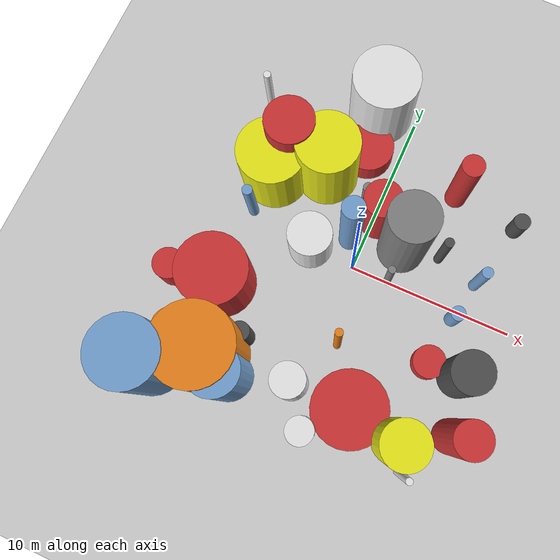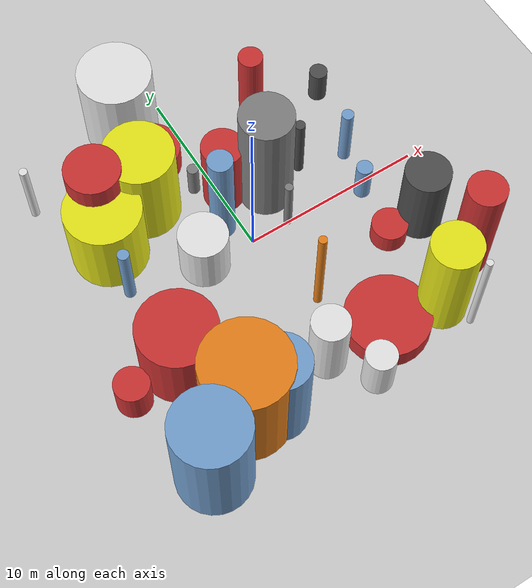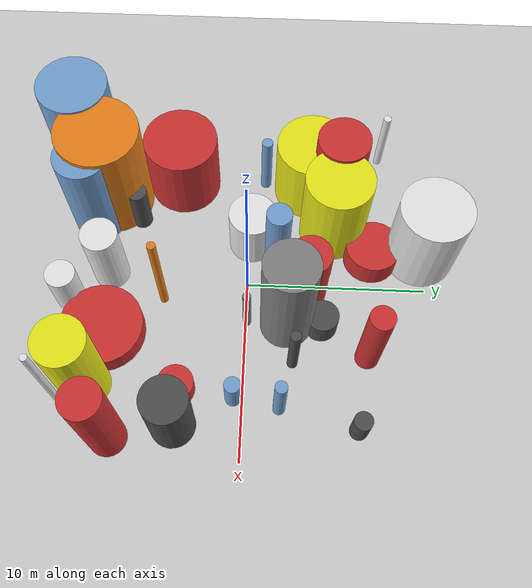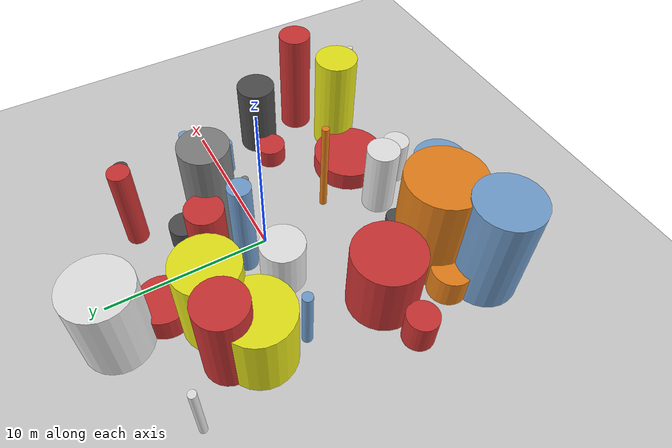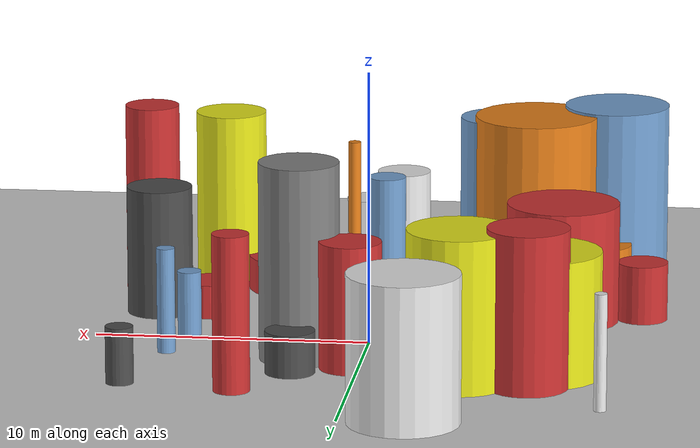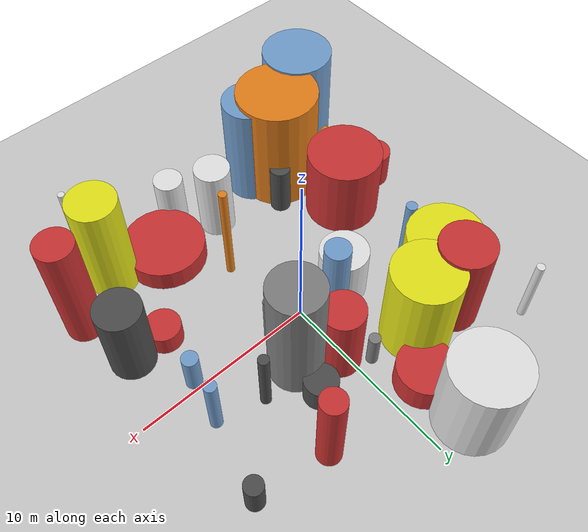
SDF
<?xml version='1.0'?>
<sdf version='1.6'>
  <world name='default'>
    <!-- Sun light -->
    <light name='sun' type='directional'>
      <cast_shadows>1</cast_shadows>
      <pose>0 0 10 0 0 0</pose>
      <diffuse>0.8 0.8 0.8 1</diffuse>
      <specular>0.2 0.2 0.2 1</specular>
      <attenuation>
        <range>1000</range>
        <constant>0.9</constant>
        <linear>0.01</linear>
        <quadratic>0.001</quadratic>
      </attenuation>
      <direction>-0.5 0.1 -0.9</direction>
    </light>

    <!-- Ground plane -->
    <model name='ground_plane'>
      <static>1</static>
      <link name='link'>
        <collision name='collision'>
          <geometry>
            <plane>
              <normal>0 0 1</normal>
              <size>100 100</size>
            </plane>
          </geometry>
          <surface>
            <contact>
              <collide_bitmask>65535</collide_bitmask>
              <ode/>
            </contact>
            <friction>
              <ode>
                <mu>100</mu>
                <mu2>50</mu2>
              </ode>
              <torsional><ode/></torsional>
            </friction>
            <bounce/>
          </surface>
          <max_contacts>10</max_contacts>
        </collision>
        <visual name='visual'>
          <cast_shadows>0</cast_shadows>
          <geometry>
            <plane>
              <normal>0 0 1</normal>
              <size>100 100</size>
            </plane>
          </geometry>
          <material>
            <script>
              <uri>file://media/materials/scripts/gazebo.material</uri>
              <n>Gazebo/Grey</n>
            </script>
          </material>
        </visual>
      </link>
    </model>

    <!-- Environment -->
    <magnetic_field>6e-06 2.3e-05 -4.2e-05</magnetic_field>
    <atmosphere type='adiabatic'/>
    <physics name='default_physics' default='0' type='ode'>
      <gravity>0 0 -9.8</gravity>
      <max_step_size>0.004</max_step_size>
      <real_time_factor>1</real_time_factor>
      <real_time_update_rate>250</real_time_update_rate>
    </physics>
    <scene>
      <ambient>0.4 0.4 0.4 1</ambient>
      <background>0.7 0.7 0.7 1</background>
      <shadows>1</shadows>
    </scene>
    <wind/>
    <spherical_coordinates>
      <surface_model>EARTH_WGS84</surface_model>
      <latitude_deg>0</latitude_deg>
      <longitude_deg>0</longitude_deg>
      <elevation>0</elevation>
      <heading_deg>0</heading_deg>
    </spherical_coordinates>

    <!-- ============ OBSTACLES (35) ============ -->
    <model name='obs_00'>
      <static>1</static>
      <link name='link'>
        <visual name='visual'>
          <geometry>
            <cylinder>
              <radius>2.0768</radius>
              <length>4.4264</length>
            </cylinder>
          </geometry>
          <material>
            <script>
              <n>Gazebo/Red</n>
              <uri>file://media/materials/scripts/gazebo.material</uri>
            </script>
            <ambient>0.8 0.2 0.2 1</ambient>
          </material>
        </visual>
        <collision name='collision'>
          <geometry>
            <cylinder>
              <radius>2.0768</radius>
              <length>4.4264</length>
            </cylinder>
          </geometry>
          <max_contacts>10</max_contacts>
          <surface>
            <contact><ode/></contact>
            <bounce/>
            <friction>
              <ode><mu>1</mu><mu2>1</mu2></ode>
              <torsional><ode/></torsional>
            </friction>
          </surface>
        </collision>
      </link>
      <pose>-6.7344 -4.0195 2.2132 0 0 3.0028</pose>
    </model>

    <model name='obs_01'>
      <static>1</static>
      <link name='link'>
        <visual name='visual'>
          <geometry>
            <cylinder>
              <radius>1.1749</radius>
              <length>1.9736</length>
            </cylinder>
          </geometry>
          <material>
            <script>
              <n>Gazebo/Orange</n>
              <uri>file://media/materials/scripts/gazebo.material</uri>
            </script>
            <ambient>0.9 0.5 0.1 1</ambient>
          </material>
        </visual>
        <collision name='collision'>
          <geometry>
            <cylinder>
              <radius>1.1749</radius>
              <length>1.9736</length>
            </cylinder>
          </geometry>
          <max_contacts>10</max_contacts>
          <surface>
            <contact><ode/></contact>
            <bounce/>
            <friction>
              <ode><mu>1</mu><mu2>1</mu2></ode>
              <torsional><ode/></torsional>
            </friction>
          </surface>
        </collision>
      </link>
      <pose>-7.8883 -7.6661 0.9868 0 0 0.8868</pose>
    </model>

    <model name='obs_02'>
      <static>1</static>
      <link name='link'>
        <visual name='visual'>
          <geometry>
            <cylinder>
              <radius>0.6553</radius>
              <length>5.6407</length>
            </cylinder>
          </geometry>
          <material>
            <script>
              <n>Gazebo/Red</n>
              <uri>file://media/materials/scripts/gazebo.material</uri>
            </script>
            <ambient>0.8 0.2 0.2 1</ambient>
          </material>
        </visual>
        <collision name='collision'>
          <geometry>
            <cylinder>
              <radius>0.6553</radius>
              <length>5.6407</length>
            </cylinder>
          </geometry>
          <max_contacts>10</max_contacts>
          <surface>
            <contact><ode/></contact>
            <bounce/>
            <friction>
              <ode><mu>1</mu><mu2>1</mu2></ode>
              <torsional><ode/></torsional>
            </friction>
          </surface>
        </collision>
      </link>
      <pose>4.0668 6.6508 2.8204 0 0 1.2073</pose>
    </model>

    <model name='obs_03'>
      <static>1</static>
      <link name='link'>
        <visual name='visual'>
          <geometry>
            <cylinder>
              <radius>1.9779</radius>
              <length>5.2497</length>
            </cylinder>
          </geometry>
          <material>
            <script>
              <n>Gazebo/White</n>
              <uri>file://media/materials/scripts/gazebo.material</uri>
            </script>
            <ambient>0.9 0.9 0.9 1</ambient>
          </material>
        </visual>
        <collision name='collision'>
          <geometry>
            <cylinder>
              <radius>1.9779</radius>
              <length>5.2497</length>
            </cylinder>
          </geometry>
          <max_contacts>10</max_contacts>
          <surface>
            <contact><ode/></contact>
            <bounce/>
            <friction>
              <ode><mu>1</mu><mu2>1</mu2></ode>
              <torsional><ode/></torsional>
            </friction>
          </surface>
        </collision>
      </link>
      <pose>-2.2908 9.8104 2.6248 0 0 0.0479</pose>
    </model>

    <model name='obs_04'>
      <static>1</static>
      <link name='link'>
        <visual name='visual'>
          <geometry>
            <cylinder>
              <radius>1.3185</radius>
              <length>3.2447</length>
            </cylinder>
          </geometry>
          <material>
            <script>
              <n>Gazebo/White</n>
              <uri>file://media/materials/scripts/gazebo.material</uri>
            </script>
            <ambient>0.9 0.9 0.9 1</ambient>
          </material>
        </visual>
        <collision name='collision'>
          <geometry>
            <cylinder>
              <radius>1.3185</radius>
              <length>3.2447</length>
            </cylinder>
          </geometry>
          <max_contacts>10</max_contacts>
          <surface>
            <contact><ode/></contact>
            <bounce/>
            <friction>
              <ode><mu>1</mu><mu2>1</mu2></ode>
              <torsional><ode/></torsional>
            </friction>
          </surface>
        </collision>
      </link>
      <pose>-2.8053 0.1844 1.6223 0 0 1.1938</pose>
    </model>

    <model name='obs_05'>
      <static>1</static>
      <link name='link'>
        <visual name='visual'>
          <geometry>
            <cylinder>
              <radius>2.2690</radius>
              <length>1.2789</length>
            </cylinder>
          </geometry>
          <material>
            <script>
              <n>Gazebo/Red</n>
              <uri>file://media/materials/scripts/gazebo.material</uri>
            </script>
            <ambient>0.8 0.2 0.2 1</ambient>
          </material>
        </visual>
        <collision name='collision'>
          <geometry>
            <cylinder>
              <radius>2.2690</radius>
              <length>1.2789</length>
            </cylinder>
          </geometry>
          <max_contacts>10</max_contacts>
          <surface>
            <contact><ode/></contact>
            <bounce/>
            <friction>
              <ode><mu>1</mu><mu2>1</mu2></ode>
              <torsional><ode/></torsional>
            </friction>
          </surface>
        </collision>
      </link>
      <pose>3.1685 -7.7235 0.6395 0 0 1.9276</pose>
    </model>

    <model name='obs_06'>
      <static>1</static>
      <link name='link'>
        <visual name='visual'>
          <geometry>
            <cylinder>
              <radius>0.2241</radius>
              <length>3.4947</length>
            </cylinder>
          </geometry>
          <material>
            <script>
              <n>Gazebo/Grey</n>
              <uri>file://media/materials/scripts/gazebo.material</uri>
            </script>
            <ambient>0.5 0.5 0.5 1</ambient>
          </material>
        </visual>
        <collision name='collision'>
          <geometry>
            <cylinder>
              <radius>0.2241</radius>
              <length>3.4947</length>
            </cylinder>
          </geometry>
          <max_contacts>10</max_contacts>
          <surface>
            <contact><ode/></contact>
            <bounce/>
            <friction>
              <ode><mu>1</mu><mu2>1</mu2></ode>
              <torsional><ode/></torsional>
            </friction>
          </surface>
        </collision>
      </link>
      <pose>2.2492 0.0797 1.7473 0 0 0.6633</pose>
    </model>

    <model name='obs_07'>
      <static>1</static>
      <link name='link'>
        <visual name='visual'>
          <geometry>
            <cylinder>
              <radius>1.3225</radius>
              <length>6.5872</length>
            </cylinder>
          </geometry>
          <material>
            <script>
              <n>Gazebo/Yellow</n>
              <uri>file://media/materials/scripts/gazebo.material</uri>
            </script>
            <ambient>0.9 0.9 0.1 1</ambient>
          </material>
        </visual>
        <collision name='collision'>
          <geometry>
            <cylinder>
              <radius>1.3225</radius>
              <length>6.5872</length>
            </cylinder>
          </geometry>
          <max_contacts>10</max_contacts>
          <surface>
            <contact><ode/></contact>
            <bounce/>
            <friction>
              <ode><mu>1</mu><mu2>1</mu2></ode>
              <torsional><ode/></torsional>
            </friction>
          </surface>
        </collision>
      </link>
      <pose>6.1739 -8.3020 3.2936 0 0 3.1333</pose>
    </model>

    <model name='obs_08'>
      <static>1</static>
      <link name='link'>
        <visual name='visual'>
          <geometry>
            <cylinder>
              <radius>0.8967</radius>
              <length>1.5483</length>
            </cylinder>
          </geometry>
          <material>
            <script>
              <n>Gazebo/DarkGrey</n>
              <uri>file://media/materials/scripts/gazebo.material</uri>
            </script>
            <ambient>0.3 0.3 0.3 1</ambient>
          </material>
        </visual>
        <collision name='collision'>
          <geometry>
            <cylinder>
              <radius>0.8967</radius>
              <length>1.5483</length>
            </cylinder>
          </geometry>
          <max_contacts>10</max_contacts>
          <surface>
            <contact><ode/></contact>
            <bounce/>
            <friction>
              <ode><mu>1</mu><mu2>1</mu2></ode>
              <torsional><ode/></torsional>
            </friction>
          </surface>
        </collision>
      </link>
      <pose>2.3340 4.1529 0.7742 0 0 2.2793</pose>
    </model>

    <model name='obs_09'>
      <static>1</static>
      <link name='link'>
        <visual name='visual'>
          <geometry>
            <cylinder>
              <radius>2.2875</radius>
              <length>6.7517</length>
            </cylinder>
          </geometry>
          <material>
            <script>
              <n>Gazebo/Orange</n>
              <uri>file://media/materials/scripts/gazebo.material</uri>
            </script>
            <ambient>0.9 0.5 0.1 1</ambient>
          </material>
        </visual>
        <collision name='collision'>
          <geometry>
            <cylinder>
              <radius>2.2875</radius>
              <length>6.7517</length>
            </cylinder>
          </geometry>
          <max_contacts>10</max_contacts>
          <surface>
            <contact><ode/></contact>
            <bounce/>
            <friction>
              <ode><mu>1</mu><mu2>1</mu2></ode>
              <torsional><ode/></torsional>
            </friction>
          </surface>
        </collision>
      </link>
      <pose>-5.4116 -8.1497 3.3759 0 0 2.2021</pose>
    </model>

    <model name='obs_10'>
      <static>1</static>
      <link name='link'>
        <visual name='visual'>
          <geometry>
            <cylinder>
              <radius>1.1228</radius>
              <length>4.6331</length>
            </cylinder>
          </geometry>
          <material>
            <script>
              <n>Gazebo/Red</n>
              <uri>file://media/materials/scripts/gazebo.material</uri>
            </script>
            <ambient>0.8 0.2 0.2 1</ambient>
          </material>
        </visual>
        <collision name='collision'>
          <geometry>
            <cylinder>
              <radius>1.1228</radius>
              <length>4.6331</length>
            </cylinder>
          </geometry>
          <max_contacts>10</max_contacts>
          <surface>
            <contact><ode/></contact>
            <bounce/>
            <friction>
              <ode><mu>1</mu><mu2>1</mu2></ode>
              <torsional><ode/></torsional>
            </friction>
          </surface>
        </collision>
      </link>
      <pose>0.2843 3.3186 2.3166 0 0 0.9047</pose>
    </model>

    <model name='obs_11'>
      <static>1</static>
      <link name='link'>
        <visual name='visual'>
          <geometry>
            <cylinder>
              <radius>0.6635</radius>
              <length>6.5957</length>
            </cylinder>
          </geometry>
          <material>
            <script>
              <n>Gazebo/Blue</n>
              <uri>file://media/materials/scripts/gazebo.material</uri>
            </script>
            <ambient>0.447 0.624 0.812 1</ambient>
          </material>
        </visual>
        <collision name='collision'>
          <geometry>
            <cylinder>
              <radius>0.6635</radius>
              <length>6.5957</length>
            </cylinder>
          </geometry>
          <max_contacts>10</max_contacts>
          <surface>
            <contact><ode/></contact>
            <bounce/>
            <friction>
              <ode><mu>1</mu><mu2>1</mu2></ode>
              <torsional><ode/></torsional>
            </friction>
          </surface>
        </collision>
      </link>
      <pose>-0.8446 1.5890 3.2979 0 0 2.0548</pose>
    </model>

    <model name='obs_12'>
      <static>1</static>
      <link name='link'>
        <visual name='visual'>
          <geometry>
            <cylinder>
              <radius>1.8726</radius>
              <length>5.5595</length>
            </cylinder>
          </geometry>
          <material>
            <script>
              <n>Gazebo/Yellow</n>
              <uri>file://media/materials/scripts/gazebo.material</uri>
            </script>
            <ambient>0.9 0.9 0.1 1</ambient>
          </material>
        </visual>
        <collision name='collision'>
          <geometry>
            <cylinder>
              <radius>1.8726</radius>
              <length>5.5595</length>
            </cylinder>
          </geometry>
          <max_contacts>10</max_contacts>
          <surface>
            <contact><ode/></contact>
            <bounce/>
            <friction>
              <ode><mu>1</mu><mu2>1</mu2></ode>
              <torsional><ode/></torsional>
            </friction>
          </surface>
        </collision>
      </link>
      <pose>-3.7150 4.7724 2.7797 0 0 1.6637</pose>
    </model>

    <model name='obs_13'>
      <static>1</static>
      <link name='link'>
        <visual name='visual'>
          <geometry>
            <cylinder>
              <radius>2.0297</radius>
              <length>4.5300</length>
            </cylinder>
          </geometry>
          <material>
            <script>
              <n>Gazebo/Yellow</n>
              <uri>file://media/materials/scripts/gazebo.material</uri>
            </script>
            <ambient>0.9 0.9 0.1 1</ambient>
          </material>
        </visual>
        <collision name='collision'>
          <geometry>
            <cylinder>
              <radius>2.0297</radius>
              <length>4.5300</length>
            </cylinder>
          </geometry>
          <max_contacts>10</max_contacts>
          <surface>
            <contact><ode/></contact>
            <bounce/>
            <friction>
              <ode><mu>1</mu><mu2>1</mu2></ode>
              <torsional><ode/></torsional>
            </friction>
          </surface>
        </collision>
      </link>
      <pose>-6.6127 3.4275 2.2650 0 0 2.9059</pose>
    </model>

    <model name='obs_14'>
      <static>1</static>
      <link name='link'>
        <visual name='visual'>
          <geometry>
            <cylinder>
              <radius>0.9643</radius>
              <length>1.2587</length>
            </cylinder>
          </geometry>
          <material>
            <script>
              <n>Gazebo/Red</n>
              <uri>file://media/materials/scripts/gazebo.material</uri>
            </script>
            <ambient>0.8 0.2 0.2 1</ambient>
          </material>
        </visual>
        <collision name='collision'>
          <geometry>
            <cylinder>
              <radius>0.9643</radius>
              <length>1.2587</length>
            </cylinder>
          </geometry>
          <max_contacts>10</max_contacts>
          <surface>
            <contact><ode/></contact>
            <bounce/>
            <friction>
              <ode><mu>1</mu><mu2>1</mu2></ode>
              <torsional><ode/></torsional>
            </friction>
          </surface>
        </collision>
      </link>
      <pose>6.2524 -3.4671 0.6293 0 0 0.8743</pose>
    </model>

    <model name='obs_15'>
      <static>1</static>
      <link name='link'>
        <visual name='visual'>
          <geometry>
            <cylinder>
              <radius>1.4576</radius>
              <length>6.5163</length>
            </cylinder>
          </geometry>
          <material>
            <script>
              <n>Gazebo/Blue</n>
              <uri>file://media/materials/scripts/gazebo.material</uri>
            </script>
            <ambient>0.447 0.624 0.812 1</ambient>
          </material>
        </visual>
        <collision name='collision'>
          <geometry>
            <cylinder>
              <radius>1.4576</radius>
              <length>6.5163</length>
            </cylinder>
          </geometry>
          <max_contacts>10</max_contacts>
          <surface>
            <contact><ode/></contact>
            <bounce/>
            <friction>
              <ode><mu>1</mu><mu2>1</mu2></ode>
              <torsional><ode/></torsional>
            </friction>
          </surface>
        </collision>
      </link>
      <pose>-3.9642 -8.8382 3.2582 0 0 3.0304</pose>
    </model>

    <model name='obs_16'>
      <static>1</static>
      <link name='link'>
        <visual name='visual'>
          <geometry>
            <cylinder>
              <radius>0.5740</radius>
              <length>3.0888</length>
            </cylinder>
          </geometry>
          <material>
            <script>
              <n>Gazebo/DarkGrey</n>
              <uri>file://media/materials/scripts/gazebo.material</uri>
            </script>
            <ambient>0.3 0.3 0.3 1</ambient>
          </material>
        </visual>
        <collision name='collision'>
          <geometry>
            <cylinder>
              <radius>0.5740</radius>
              <length>3.0888</length>
            </cylinder>
          </geometry>
          <max_contacts>10</max_contacts>
          <surface>
            <contact><ode/></contact>
            <bounce/>
            <friction>
              <ode><mu>1</mu><mu2>1</mu2></ode>
              <torsional><ode/></torsional>
            </friction>
          </surface>
        </collision>
      </link>
      <pose>-4.0648 -6.3775 1.5444 0 0 0.3318</pose>
    </model>

    <model name='obs_17'>
      <static>1</static>
      <link name='link'>
        <visual name='visual'>
          <geometry>
            <cylinder>
              <radius>1.4452</radius>
              <length>7.2028</length>
            </cylinder>
          </geometry>
          <material>
            <script>
              <n>Gazebo/Grey</n>
              <uri>file://media/materials/scripts/gazebo.material</uri>
            </script>
            <ambient>0.5 0.5 0.5 1</ambient>
          </material>
        </visual>
        <collision name='collision'>
          <geometry>
            <cylinder>
              <radius>1.4452</radius>
              <length>7.2028</length>
            </cylinder>
          </geometry>
          <max_contacts>10</max_contacts>
          <surface>
            <contact><ode/></contact>
            <bounce/>
            <friction>
              <ode><mu>1</mu><mu2>1</mu2></ode>
              <torsional><ode/></torsional>
            </friction>
          </surface>
        </collision>
      </link>
      <pose>2.2473 2.2343 3.6014 0 0 0.6812</pose>
    </model>

    <model name='obs_18'>
      <static>1</static>
      <link name='link'>
        <visual name='visual'>
          <geometry>
            <cylinder>
              <radius>1.9662</radius>
              <length>6.8559</length>
            </cylinder>
          </geometry>
          <material>
            <script>
              <n>Gazebo/Blue</n>
              <uri>file://media/materials/scripts/gazebo.material</uri>
            </script>
            <ambient>0.447 0.624 0.812 1</ambient>
          </material>
        </visual>
        <collision name='collision'>
          <geometry>
            <cylinder>
              <radius>1.9662</radius>
              <length>6.8559</length>
            </cylinder>
          </geometry>
          <max_contacts>10</max_contacts>
          <surface>
            <contact><ode/></contact>
            <bounce/>
            <friction>
              <ode><mu>1</mu><mu2>1</mu2></ode>
              <torsional><ode/></torsional>
            </friction>
          </surface>
        </collision>
      </link>
      <pose>-8.3362 -9.8539 3.4280 0 0 3.0411</pose>
    </model>

    <model name='obs_19'>
      <static>1</static>
      <link name='link'>
        <visual name='visual'>
          <geometry>
            <cylinder>
              <radius>0.4946</radius>
              <length>2.0604</length>
            </cylinder>
          </geometry>
          <material>
            <script>
              <n>Gazebo/DarkGrey</n>
              <uri>file://media/materials/scripts/gazebo.material</uri>
            </script>
            <ambient>0.3 0.3 0.3 1</ambient>
          </material>
        </visual>
        <collision name='collision'>
          <geometry>
            <cylinder>
              <radius>0.4946</radius>
              <length>2.0604</length>
            </cylinder>
          </geometry>
          <max_contacts>10</max_contacts>
          <surface>
            <contact><ode/></contact>
            <bounce/>
            <friction>
              <ode><mu>1</mu><mu2>1</mu2></ode>
              <torsional><ode/></torsional>
            </friction>
          </surface>
        </collision>
      </link>
      <pose>8.0995 6.1226 1.0302 0 0 0.4665</pose>
    </model>

    <model name='obs_20'>
      <static>1</static>
      <link name='link'>
        <visual name='visual'>
          <geometry>
            <cylinder>
              <radius>0.4365</radius>
              <length>2.3821</length>
            </cylinder>
          </geometry>
          <material>
            <script>
              <n>Gazebo/Blue</n>
              <uri>file://media/materials/scripts/gazebo.material</uri>
            </script>
            <ambient>0.447 0.624 0.812 1</ambient>
          </material>
        </visual>
        <collision name='collision'>
          <geometry>
            <cylinder>
              <radius>0.4365</radius>
              <length>2.3821</length>
            </cylinder>
          </geometry>
          <max_contacts>10</max_contacts>
          <surface>
            <contact><ode/></contact>
            <bounce/>
            <friction>
              <ode><mu>1</mu><mu2>1</mu2></ode>
              <torsional><ode/></torsional>
            </friction>
          </surface>
        </collision>
      </link>
      <pose>6.6219 -0.4683 1.1910 0 0 0.5347</pose>
    </model>

    <model name='obs_21'>
      <static>1</static>
      <link name='link'>
        <visual name='visual'>
          <geometry>
            <cylinder>
              <radius>0.2226</radius>
              <length>4.1639</length>
            </cylinder>
          </geometry>
          <material>
            <script>
              <n>Gazebo/White</n>
              <uri>file://media/materials/scripts/gazebo.material</uri>
            </script>
            <ambient>0.9 0.9 0.9 1</ambient>
          </material>
        </visual>
        <collision name='collision'>
          <geometry>
            <cylinder>
              <radius>0.2226</radius>
              <length>4.1639</length>
            </cylinder>
          </geometry>
          <max_contacts>10</max_contacts>
          <surface>
            <contact><ode/></contact>
            <bounce/>
            <friction>
              <ode><mu>1</mu><mu2>1</mu2></ode>
              <torsional><ode/></torsional>
            </friction>
          </surface>
        </collision>
      </link>
      <pose>-8.8489 7.6585 2.0820 0 0 1.2093</pose>
    </model>

    <model name='obs_22'>
      <static>1</static>
      <link name='link'>
        <visual name='visual'>
          <geometry>
            <cylinder>
              <radius>1.4645</radius>
              <length>5.7373</length>
            </cylinder>
          </geometry>
          <material>
            <script>
              <n>Gazebo/Red</n>
              <uri>file://media/materials/scripts/gazebo.material</uri>
            </script>
            <ambient>0.8 0.2 0.2 1</ambient>
          </material>
        </visual>
        <collision name='collision'>
          <geometry>
            <cylinder>
              <radius>1.4645</radius>
              <length>5.7373</length>
            </cylinder>
          </geometry>
          <max_contacts>10</max_contacts>
          <surface>
            <contact><ode/></contact>
            <bounce/>
            <friction>
              <ode><mu>1</mu><mu2>1</mu2></ode>
              <torsional><ode/></torsional>
            </friction>
          </surface>
        </collision>
      </link>
      <pose>-6.1470 5.0108 2.8686 0 0 2.3449</pose>
    </model>

    <model name='obs_23'>
      <static>1</static>
      <link name='link'>
        <visual name='visual'>
          <geometry>
            <cylinder>
              <radius>0.9941</radius>
              <length>4.5802</length>
            </cylinder>
          </geometry>
          <material>
            <script>
              <n>Gazebo/White</n>
              <uri>file://media/materials/scripts/gazebo.material</uri>
            </script>
            <ambient>0.9 0.9 0.9 1</ambient>
          </material>
        </visual>
        <collision name='collision'>
          <geometry>
            <cylinder>
              <radius>0.9941</radius>
              <length>4.5802</length>
            </cylinder>
          </geometry>
          <max_contacts>10</max_contacts>
          <surface>
            <contact><ode/></contact>
            <bounce/>
            <friction>
              <ode><mu>1</mu><mu2>1</mu2></ode>
              <torsional><ode/></torsional>
            </friction>
          </surface>
        </collision>
      </link>
      <pose>-0.4669 -7.7408 2.2901 0 0 0.8414</pose>
    </model>

    <model name='obs_24'>
      <static>1</static>
      <link name='link'>
        <visual name='visual'>
          <geometry>
            <cylinder>
              <radius>0.1857</radius>
              <length>6.3624</length>
            </cylinder>
          </geometry>
          <material>
            <script>
              <n>Gazebo/White</n>
              <uri>file://media/materials/scripts/gazebo.material</uri>
            </script>
            <ambient>0.9 0.9 0.9 1</ambient>
          </material>
        </visual>
        <collision name='collision'>
          <geometry>
            <cylinder>
              <radius>0.1857</radius>
              <length>6.3624</length>
            </cylinder>
          </geometry>
          <max_contacts>10</max_contacts>
          <surface>
            <contact><ode/></contact>
            <bounce/>
            <friction>
              <ode><mu>1</mu><mu2>1</mu2></ode>
              <torsional><ode/></torsional>
            </friction>
          </surface>
        </collision>
      </link>
      <pose>6.9649 -9.7741 3.1812 0 0 1.8644</pose>
    </model>

    <model name='obs_25'>
      <static>1</static>
      <link name='link'>
        <visual name='visual'>
          <geometry>
            <cylinder>
              <radius>0.9282</radius>
              <length>2.1620</length>
            </cylinder>
          </geometry>
          <material>
            <script>
              <n>Gazebo/Red</n>
              <uri>file://media/materials/scripts/gazebo.material</uri>
            </script>
            <ambient>0.8 0.2 0.2 1</ambient>
          </material>
        </visual>
        <collision name='collision'>
          <geometry>
            <cylinder>
              <radius>0.9282</radius>
              <length>2.1620</length>
            </cylinder>
          </geometry>
          <max_contacts>10</max_contacts>
          <surface>
            <contact><ode/></contact>
            <bounce/>
            <friction>
              <ode><mu>1</mu><mu2>1</mu2></ode>
              <torsional><ode/></torsional>
            </friction>
          </surface>
        </collision>
      </link>
      <pose>-9.6552 -4.4521 1.0810 0 0 0.6814</pose>
    </model>

    <model name='obs_26'>
      <static>1</static>
      <link name='link'>
        <visual name='visual'>
          <geometry>
            <cylinder>
              <radius>1.0098</radius>
              <length>7.0963</length>
            </cylinder>
          </geometry>
          <material>
            <script>
              <n>Gazebo/Red</n>
              <uri>file://media/materials/scripts/gazebo.material</uri>
            </script>
            <ambient>0.8 0.2 0.2 1</ambient>
          </material>
        </visual>
        <collision name='collision'>
          <geometry>
            <cylinder>
              <radius>1.0098</radius>
              <length>7.0963</length>
            </cylinder>
          </geometry>
          <max_contacts>10</max_contacts>
          <surface>
            <contact><ode/></contact>
            <bounce/>
            <friction>
              <ode><mu>1</mu><mu2>1</mu2></ode>
              <torsional><ode/></torsional>
            </friction>
          </surface>
        </collision>
      </link>
      <pose>8.9523 -6.7960 3.5481 0 0 0.9338</pose>
    </model>

    <model name='obs_27'>
      <static>1</static>
      <link name='link'>
        <visual name='visual'>
          <geometry>
            <cylinder>
              <radius>0.3065</radius>
              <length>4.1499</length>
            </cylinder>
          </geometry>
          <material>
            <script>
              <n>Gazebo/Blue</n>
              <uri>file://media/materials/scripts/gazebo.material</uri>
            </script>
            <ambient>0.447 0.624 0.812 1</ambient>
          </material>
        </visual>
        <collision name='collision'>
          <geometry>
            <cylinder>
              <radius>0.3065</radius>
              <length>4.1499</length>
            </cylinder>
          </geometry>
          <max_contacts>10</max_contacts>
          <surface>
            <contact><ode/></contact>
            <bounce/>
            <friction>
              <ode><mu>1</mu><mu2>1</mu2></ode>
              <torsional><ode/></torsional>
            </friction>
          </surface>
        </collision>
      </link>
      <pose>-6.9111 0.8523 2.0749 0 0 1.0565</pose>
    </model>

    <model name='obs_28'>
      <static>1</static>
      <link name='link'>
        <visual name='visual'>
          <geometry>
            <cylinder>
              <radius>0.3275</radius>
              <length>3.8469</length>
            </cylinder>
          </geometry>
          <material>
            <script>
              <n>Gazebo/Blue</n>
              <uri>file://media/materials/scripts/gazebo.material</uri>
            </script>
            <ambient>0.447 0.624 0.812 1</ambient>
          </material>
        </visual>
        <collision name='collision'>
          <geometry>
            <cylinder>
              <radius>0.3275</radius>
              <length>3.8469</length>
            </cylinder>
          </geometry>
          <max_contacts>10</max_contacts>
          <surface>
            <contact><ode/></contact>
            <bounce/>
            <friction>
              <ode><mu>1</mu><mu2>1</mu2></ode>
              <torsional><ode/></torsional>
            </friction>
          </surface>
        </collision>
      </link>
      <pose>7.0980 1.9609 1.9235 0 0 1.4922</pose>
    </model>

    <model name='obs_29'>
      <static>1</static>
      <link name='link'>
        <visual name='visual'>
          <geometry>
            <cylinder>
              <radius>0.3111</radius>
              <length>2.0467</length>
            </cylinder>
          </geometry>
          <material>
            <script>
              <n>Gazebo/Grey</n>
              <uri>file://media/materials/scripts/gazebo.material</uri>
            </script>
            <ambient>0.5 0.5 0.5 1</ambient>
          </material>
        </visual>
        <collision name='collision'>
          <geometry>
            <cylinder>
              <radius>0.3111</radius>
              <length>2.0467</length>
            </cylinder>
          </geometry>
          <max_contacts>10</max_contacts>
          <surface>
            <contact><ode/></contact>
            <bounce/>
            <friction>
              <ode><mu>1</mu><mu2>1</mu2></ode>
              <torsional><ode/></torsional>
            </friction>
          </surface>
        </collision>
      </link>
      <pose>-0.9371 4.4212 1.0234 0 0 2.6873</pose>
    </model>

    <model name='obs_30'>
      <static>1</static>
      <link name='link'>
        <visual name='visual'>
          <geometry>
            <cylinder>
              <radius>0.8192</radius>
              <length>2.9891</length>
            </cylinder>
          </geometry>
          <material>
            <script>
              <n>Gazebo/White</n>
              <uri>file://media/materials/scripts/gazebo.material</uri>
            </script>
            <ambient>0.9 0.9 0.9 1</ambient>
          </material>
        </visual>
        <collision name='collision'>
          <geometry>
            <cylinder>
              <radius>0.8192</radius>
              <length>2.9891</length>
            </cylinder>
          </geometry>
          <max_contacts>10</max_contacts>
          <surface>
            <contact><ode/></contact>
            <bounce/>
            <friction>
              <ode><mu>1</mu><mu2>1</mu2></ode>
              <torsional><ode/></torsional>
            </friction>
          </surface>
        </collision>
      </link>
      <pose>1.1119 -9.8871 1.4946 0 0 2.6411</pose>
    </model>

    <model name='obs_31'>
      <static>1</static>
      <link name='link'>
        <visual name='visual'>
          <geometry>
            <cylinder>
              <radius>0.2248</radius>
              <length>6.3807</length>
            </cylinder>
          </geometry>
          <material>
            <script>
              <n>Gazebo/Orange</n>
              <uri>file://media/materials/scripts/gazebo.material</uri>
            </script>
            <ambient>0.9 0.5 0.1 1</ambient>
          </material>
        </visual>
        <collision name='collision'>
          <geometry>
            <cylinder>
              <radius>0.2248</radius>
              <length>6.3807</length>
            </cylinder>
          </geometry>
          <max_contacts>10</max_contacts>
          <surface>
            <contact><ode/></contact>
            <bounce/>
            <friction>
              <ode><mu>1</mu><mu2>1</mu2></ode>
              <torsional><ode/></torsional>
            </friction>
          </surface>
        </collision>
      </link>
      <pose>1.0461 -4.6186 3.1904 0 0 1.0338</pose>
    </model>

    <model name='obs_32'>
      <static>1</static>
      <link name='link'>
        <visual name='visual'>
          <geometry>
            <cylinder>
              <radius>0.2844</radius>
              <length>4.0745</length>
            </cylinder>
          </geometry>
          <material>
            <script>
              <n>Gazebo/DarkGrey</n>
              <uri>file://media/materials/scripts/gazebo.material</uri>
            </script>
            <ambient>0.3 0.3 0.3 1</ambient>
          </material>
        </visual>
        <collision name='collision'>
          <geometry>
            <cylinder>
              <radius>0.2844</radius>
              <length>4.0745</length>
            </cylinder>
          </geometry>
          <max_contacts>10</max_contacts>
          <surface>
            <contact><ode/></contact>
            <bounce/>
            <friction>
              <ode><mu>1</mu><mu2>1</mu2></ode>
              <torsional><ode/></torsional>
            </friction>
          </surface>
        </collision>
      </link>
      <pose>4.5499 2.6176 2.0372 0 0 1.6836</pose>
    </model>

    <model name='obs_33'>
      <static>1</static>
      <link name='link'>
        <visual name='visual'>
          <geometry>
            <cylinder>
              <radius>1.2092</radius>
              <length>4.7709</length>
            </cylinder>
          </geometry>
          <material>
            <script>
              <n>Gazebo/DarkGrey</n>
              <uri>file://media/materials/scripts/gazebo.material</uri>
            </script>
            <ambient>0.3 0.3 0.3 1</ambient>
          </material>
        </visual>
        <collision name='collision'>
          <geometry>
            <cylinder>
              <radius>1.2092</radius>
              <length>4.7709</length>
            </cylinder>
          </geometry>
          <max_contacts>10</max_contacts>
          <surface>
            <contact><ode/></contact>
            <bounce/>
            <friction>
              <ode><mu>1</mu><mu2>1</mu2></ode>
              <torsional><ode/></torsional>
            </friction>
          </surface>
        </collision>
      </link>
      <pose>8.1859 -3.5155 2.3855 0 0 0.9752</pose>
    </model>

    <model name='obs_34'>
      <static>1</static>
      <link name='link'>
        <visual name='visual'>
          <geometry>
            <cylinder>
              <radius>1.5421</radius>
              <length>1.5961</length>
            </cylinder>
          </geometry>
          <material>
            <script>
              <n>Gazebo/Red</n>
              <uri>file://media/materials/scripts/gazebo.material</uri>
            </script>
            <ambient>0.8 0.2 0.2 1</ambient>
          </material>
        </visual>
        <collision name='collision'>
          <geometry>
            <cylinder>
              <radius>1.5421</radius>
              <length>1.5961</length>
            </cylinder>
          </geometry>
          <max_contacts>10</max_contacts>
          <surface>
            <contact><ode/></contact>
            <bounce/>
            <friction>
              <ode><mu>1</mu><mu2>1</mu2></ode>
              <torsional><ode/></torsional>
            </friction>
          </surface>
        </collision>
      </link>
      <pose>-1.9799 6.9990 0.7981 0 0 1.6978</pose>
    </model>

    <!-- GUI camera -->
    <gui fullscreen='0'>
      <camera name='user_camera'>
        <pose>-15 0 18 0 0.85 0.15</pose>
        <view_controller>orbit</view_controller>
        <projection_type>perspective</projection_type>
      </camera>
    </gui>
  </world>
</sdf>
